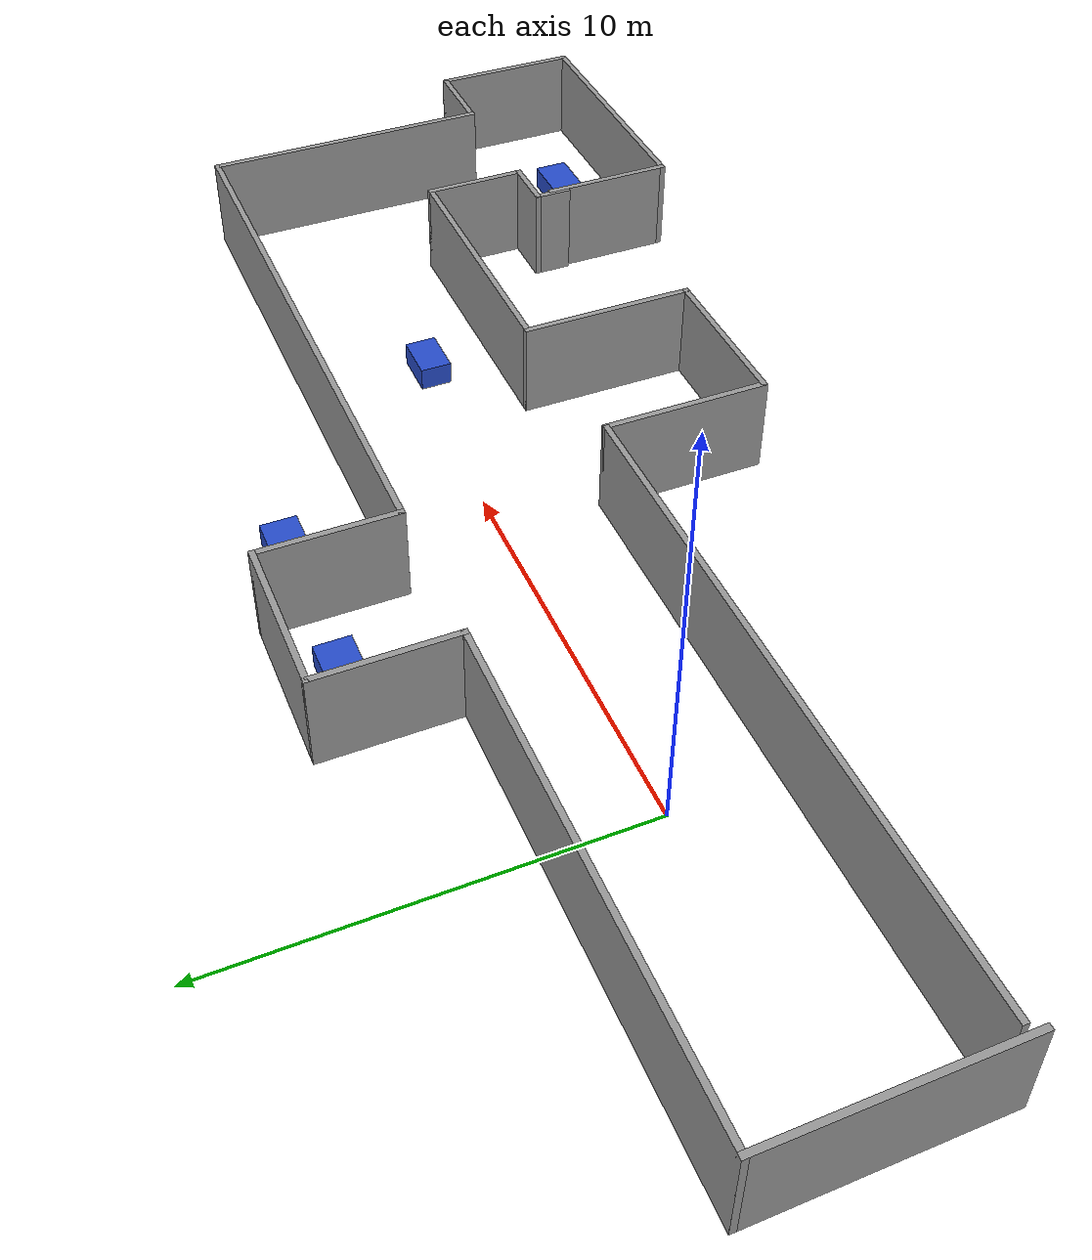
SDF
<?xml version='1.0'?>
<sdf version='1.7'>
  <model name='warehouse'>
    <pose>8.73746 -1.3318 0 0 -0 0</pose>
    <link name='Wall_11'>
      <collision name='Wall_11_Collision'>
        <geometry>
          <box>
            <size>3.5 0.15 2.5</size>
          </box>
        </geometry>
        <pose>0 0 1.25 0 -0 0</pose>
      </collision>
      <visual name='Wall_11_Visual'>
        <pose>0 0 1.25 0 -0 0</pose>
        <geometry>
          <box>
            <size>3.5 0.15 2.5</size>
          </box>
        </geometry>
        <material>
          <script>
            <uri>file://media/materials/scripts/gazebo.material</uri>
            <name>Gazebo/Grey</name>
          </script>
          <ambient>1 1 1 1</ambient>
        </material>
        <meta>
          <layer>0</layer>
        </meta>
      </visual>
      <pose>-4.725 5.725 0 0 -0 1.5708</pose>
    </link>
    <link name='Wall_12'>
      <collision name='Wall_12_Collision'>
        <geometry>
          <box>
            <size>4 0.15 2.5</size>
          </box>
        </geometry>
        <pose>0 0 1.25 0 -0 0</pose>
      </collision>
      <visual name='Wall_12_Visual'>
        <pose>0 0 1.25 0 -0 0</pose>
        <geometry>
          <box>
            <size>4 0.15 2.5</size>
          </box>
        </geometry>
        <material>
          <script>
            <uri>file://media/materials/scripts/gazebo.material</uri>
            <name>Gazebo/Grey</name>
          </script>
          <ambient>1 1 1 1</ambient>
        </material>
        <meta>
          <layer>0</layer>
        </meta>
      </visual>
      <pose>-2.8 7.4 0 0 -0 0</pose>
    </link>
    <link name='Wall_13'>
      <collision name='Wall_13_Collision'>
        <geometry>
          <box>
            <size>3.5 0.15 2.5</size>
          </box>
        </geometry>
        <pose>0 0 1.25 0 -0 0</pose>
      </collision>
      <visual name='Wall_13_Visual'>
        <pose>0 0 1.25 0 -0 0</pose>
        <geometry>
          <box>
            <size>3.5 0.15 2.5</size>
          </box>
        </geometry>
        <material>
          <script>
            <uri>file://media/materials/scripts/gazebo.material</uri>
            <name>Gazebo/Grey</name>
          </script>
          <ambient>1 1 1 1</ambient>
        </material>
        <meta>
          <layer>0</layer>
        </meta>
      </visual>
      <pose>-0.875 5.725 0 0 -0 -1.5708</pose>
    </link>
    <link name='Wall_14'>
      <collision name='Wall_14_Collision'>
        <geometry>
          <box>
            <size>15.5 0.15 2.5</size>
          </box>
        </geometry>
        <pose>0 0 1.25 0 -0 0</pose>
      </collision>
      <visual name='Wall_14_Visual'>
        <pose>0 0 1.25 0 -0 0</pose>
        <geometry>
          <box>
            <size>15.5 0.15 2.5</size>
          </box>
        </geometry>
        <material>
          <script>
            <uri>file://media/materials/scripts/gazebo.material</uri>
            <name>Gazebo/Grey</name>
          </script>
          <ambient>1 1 1 1</ambient>
        </material>
        <meta>
          <layer>0</layer>
        </meta>
      </visual>
      <pose>6.8 4.05 0 0 -0 0</pose>
    </link>
    <link name='Wall_15'>
      <collision name='Wall_15_Collision'>
        <geometry>
          <box>
            <size>7.75 0.15 2.5</size>
          </box>
        </geometry>
        <pose>0 0 1.25 0 -0 0</pose>
      </collision>
      <visual name='Wall_15_Visual'>
        <pose>0 0 1.25 0 -0 0</pose>
        <geometry>
          <box>
            <size>7.75 0.15 2.5</size>
          </box>
        </geometry>
        <material>
          <script>
            <uri>file://media/materials/scripts/gazebo.material</uri>
            <name>Gazebo/Grey</name>
          </script>
          <ambient>1 1 1 1</ambient>
        </material>
        <meta>
          <layer>0</layer>
        </meta>
      </visual>
      <pose>14.475 0.25 0 0 -0 -1.5708</pose>
    </link>
    <link name='Wall_16'>
      <collision name='Wall_16_Collision'>
        <geometry>
          <box>
            <size>2.25 0.15 2.5</size>
          </box>
        </geometry>
        <pose>0 0 1.25 0 -0 0</pose>
      </collision>
      <visual name='Wall_16_Visual'>
        <pose>0 0 1.25 0 -0 0</pose>
        <geometry>
          <box>
            <size>2.25 0.15 2.5</size>
          </box>
        </geometry>
        <material>
          <script>
            <uri>file://media/materials/scripts/gazebo.material</uri>
            <name>Gazebo/Grey</name>
          </script>
          <ambient>1 1 1 1</ambient>
        </material>
        <meta>
          <layer>0</layer>
        </meta>
      </visual>
      <pose>15.525 -3.55 0 0 -0 0</pose>
    </link>
    <link name='Wall_17'>
      <collision name='Wall_17_Collision'>
        <geometry>
          <box>
            <size>4 0.15 2.5</size>
          </box>
        </geometry>
        <pose>0 0 1.25 0 -0 0</pose>
      </collision>
      <visual name='Wall_17_Visual'>
        <pose>0 0 1.25 0 -0 0</pose>
        <geometry>
          <box>
            <size>4 0.15 2.5</size>
          </box>
        </geometry>
        <material>
          <script>
            <uri>file://media/materials/scripts/gazebo.material</uri>
            <name>Gazebo/Grey</name>
          </script>
          <ambient>1 1 1 1</ambient>
        </material>
        <meta>
          <layer>0</layer>
        </meta>
      </visual>
      <pose>16.575 -5.475 0 0 -0 -1.5708</pose>
    </link>
    <link name='Wall_18'>
      <collision name='Wall_18_Collision'>
        <geometry>
          <box>
            <size>7 0.15 2.5</size>
          </box>
        </geometry>
        <pose>0 0 1.25 0 -0 0</pose>
      </collision>
      <visual name='Wall_18_Visual'>
        <pose>0 0 1.25 0 -0 0</pose>
        <geometry>
          <box>
            <size>7 0.15 2.5</size>
          </box>
        </geometry>
        <material>
          <script>
            <uri>file://media/materials/scripts/gazebo.material</uri>
            <name>Gazebo/Grey</name>
          </script>
          <ambient>1 1 1 1</ambient>
        </material>
        <meta>
          <layer>0</layer>
        </meta>
      </visual>
      <pose>13.15 -7.4 0 0 -0 3.14159</pose>
    </link>
    <link name='Wall_19'>
      <collision name='Wall_19_Collision'>
        <geometry>
          <box>
            <size>3.5 0.15 2.5</size>
          </box>
        </geometry>
        <pose>0 0 1.25 0 -0 0</pose>
      </collision>
      <visual name='Wall_19_Visual'>
        <pose>0 0 1.25 0 -0 0</pose>
        <geometry>
          <box>
            <size>3.5 0.15 2.5</size>
          </box>
        </geometry>
        <material>
          <script>
            <uri>file://media/materials/scripts/gazebo.material</uri>
            <name>Gazebo/Grey</name>
          </script>
          <ambient>1 1 1 1</ambient>
        </material>
        <meta>
          <layer>0</layer>
        </meta>
      </visual>
      <pose>9.725 -5.725 0 0 -0 1.5708</pose>
    </link>
    <link name='Wall_28'>
      <collision name='Wall_28_Collision'>
        <geometry>
          <box>
            <size>16.5 0.15 2.5</size>
          </box>
        </geometry>
        <pose>0 0 1.25 0 -0 0</pose>
      </collision>
      <visual name='Wall_28_Visual'>
        <pose>0 0 1.25 0 -0 0</pose>
        <geometry>
          <box>
            <size>16.5 0.15 2.5</size>
          </box>
        </geometry>
        <material>
          <script>
            <uri>file://media/materials/scripts/gazebo.material</uri>
            <name>Gazebo/Grey</name>
          </script>
          <ambient>1 1 1 1</ambient>
        </material>
        <meta>
          <layer>0</layer>
        </meta>
      </visual>
      <pose>-8.13879 -1.26237 0 0 -0 0</pose>
    </link>
    <link name='Wall_29'>
      <collision name='Wall_29_Collision'>
        <geometry>
          <box>
            <size>4.25 0.15 2.5</size>
          </box>
        </geometry>
        <pose>0 0 1.25 0 -0 0</pose>
      </collision>
      <visual name='Wall_29_Visual'>
        <pose>0 0 1.25 0 -0 0</pose>
        <geometry>
          <box>
            <size>4.25 0.15 2.5</size>
          </box>
        </geometry>
        <material>
          <script>
            <uri>file://media/materials/scripts/gazebo.material</uri>
            <name>Gazebo/Grey</name>
          </script>
          <ambient>1 1 1 1</ambient>
        </material>
        <meta>
          <layer>0</layer>
        </meta>
      </visual>
      <pose>0.036209 -3.31237 0 0 -0 -1.5708</pose>
    </link>
    <link name='Wall_30'>
      <collision name='Wall_30_Collision'>
        <geometry>
          <box>
            <size>4.25 0.15 2.5</size>
          </box>
        </geometry>
        <pose>0 0 1.25 0 -0 0</pose>
      </collision>
      <visual name='Wall_30_Visual'>
        <pose>0 0 1.25 0 -0 0</pose>
        <geometry>
          <box>
            <size>4.25 0.15 2.5</size>
          </box>
        </geometry>
        <material>
          <script>
            <uri>file://media/materials/scripts/gazebo.material</uri>
            <name>Gazebo/Grey</name>
          </script>
          <ambient>1 1 1 1</ambient>
        </material>
        <meta>
          <layer>0</layer>
        </meta>
      </visual>
      <pose>2.08621 -5.36237 0 0 -0 0</pose>
    </link>
    <link name='Wall_31'>
      <collision name='Wall_31_Collision'>
        <geometry>
          <box>
            <size>4.5 0.15 2.5</size>
          </box>
        </geometry>
        <pose>0 0 1.25 0 -0 0</pose>
      </collision>
      <visual name='Wall_31_Visual'>
        <pose>0 0 1.25 0 -0 0</pose>
        <geometry>
          <box>
            <size>4.5 0.15 2.5</size>
          </box>
        </geometry>
        <material>
          <script>
            <uri>file://media/materials/scripts/gazebo.material</uri>
            <name>Gazebo/Grey</name>
          </script>
          <ambient>1 1 1 1</ambient>
        </material>
        <meta>
          <layer>0</layer>
        </meta>
      </visual>
      <pose>4.13621 -3.18737 0 0 -0 1.5708</pose>
    </link>
    <link name='Wall_32'>
      <collision name='Wall_32_Collision'>
        <geometry>
          <box>
            <size>7 0.15 2.5</size>
          </box>
        </geometry>
        <pose>0 0 1.25 0 -0 0</pose>
      </collision>
      <visual name='Wall_32_Visual'>
        <pose>0 0 1.25 0 -0 0</pose>
        <geometry>
          <box>
            <size>7 0.15 2.5</size>
          </box>
        </geometry>
        <material>
          <script>
            <uri>file://media/materials/scripts/gazebo.material</uri>
            <name>Gazebo/Grey</name>
          </script>
          <ambient>1 1 1 1</ambient>
        </material>
        <meta>
          <layer>0</layer>
        </meta>
      </visual>
      <pose>7.56121 -1.01237 0 0 -0 0</pose>
    </link>
    <link name='Wall_33'>
      <collision name='Wall_33_Collision'>
        <geometry>
          <box>
            <size>2.75 0.15 2.5</size>
          </box>
        </geometry>
        <pose>0 0 1.25 0 -0 0</pose>
      </collision>
      <visual name='Wall_33_Visual'>
        <pose>0 0 1.25 0 -0 0</pose>
        <geometry>
          <box>
            <size>2.75 0.15 2.5</size>
          </box>
        </geometry>
        <material>
          <script>
            <uri>file://media/materials/scripts/gazebo.material</uri>
            <name>Gazebo/Grey</name>
          </script>
          <ambient>1 1 1 1</ambient>
        </material>
        <meta>
          <layer>0</layer>
        </meta>
      </visual>
      <pose>10.9862 -2.31237 0 0 -0 -1.5708</pose>
    </link>
    <link name='Wall_34'>
      <collision name='Wall_34_Collision'>
        <geometry>
          <box>
            <size>1.5 0.15 2.5</size>
          </box>
        </geometry>
        <pose>0 0 1.25 0 -0 0</pose>
      </collision>
      <visual name='Wall_34_Visual'>
        <pose>0 0 1.25 0 -0 0</pose>
        <geometry>
          <box>
            <size>1.5 0.15 2.5</size>
          </box>
        </geometry>
        <material>
          <script>
            <uri>file://media/materials/scripts/gazebo.material</uri>
            <name>Gazebo/Grey</name>
          </script>
          <ambient>1 1 1 1</ambient>
        </material>
        <meta>
          <layer>0</layer>
        </meta>
      </visual>
      <pose>10.3112 -3.61237 0 0 -0 3.14159</pose>
    </link>
    <link name='Wall_35'>
      <collision name='Wall_35_Collision'>
        <geometry>
          <box>
            <size>1 0.15 2.5</size>
          </box>
        </geometry>
        <pose>0 0 1.25 0 -0 0</pose>
      </collision>
      <visual name='Wall_35_Visual'>
        <pose>0 0 1.25 0 -0 0</pose>
        <geometry>
          <box>
            <size>1 0.15 2.5</size>
          </box>
        </geometry>
        <material>
          <script>
            <uri>file://media/materials/scripts/gazebo.material</uri>
            <name>Gazebo/Grey</name>
          </script>
          <ambient>1 1 1 1</ambient>
        </material>
        <meta>
          <layer>0</layer>
        </meta>
      </visual>
      <pose>9.63621 -4.03737 0 0 -0 -1.5708</pose>
    </link>
    <link name='Wall_38'>
      <collision name='Wall_38_Collision'>
        <geometry>
          <box>
            <size>5.75 0.15 2.5</size>
          </box>
        </geometry>
        <pose>0 0 1.25 0 -0 0</pose>
      </collision>
      <visual name='Wall_38_Visual'>
        <pose>0 0 1.25 0 -0 0</pose>
        <geometry>
          <box>
            <size>5.75 0.15 2.5</size>
          </box>
        </geometry>
        <material>
          <script>
            <uri>file://media/materials/scripts/gazebo.material</uri>
            <name>Gazebo/Grey</name>
          </script>
          <ambient>1 1 1 1</ambient>
        </material>
        <meta>
          <layer>0</layer>
        </meta>
      </visual>
      <pose>-16.575 1.25 0 0 -0 -1.5708</pose>
    </link>
    <link name='Wall_7'>
      <collision name='Wall_7_Collision'>
        <geometry>
          <box>
            <size>12 0.15 2.5</size>
          </box>
        </geometry>
        <pose>0 0 1.25 0 -0 0</pose>
      </collision>
      <visual name='Wall_7_Visual'>
        <pose>0 0 1.25 0 -0 0</pose>
        <geometry>
          <box>
            <size>12 0.15 2.5</size>
          </box>
        </geometry>
        <material>
          <script>
            <uri>file://media/materials/scripts/gazebo.material</uri>
            <name>Gazebo/Grey</name>
          </script>
          <ambient>1 1 1 1</ambient>
        </material>
        <meta>
          <layer>0</layer>
        </meta>
      </visual>
      <pose>-10.65 4.05 0 0 -0 0</pose>
    </link>
    <link name='Bed_1'>
      <collision name='Bed_1_Collision'>
        <geometry>
          <box>
            <size>2.0 0.9 0.6</size>
          </box>
        </geometry>
        <pose>0 0 0.3 0 0 0</pose>
      </collision>
      <visual name='Bed_1_Visual'>
        <pose>0 0 0.3 0 0 0</pose>
        <geometry>
          <box>
            <size>2.0 0.9 0.6</size>
          </box>
        </geometry>
        <material>
          <script>
            <uri>file://media/materials/scripts/gazebo.material</uri>
            <name>Gazebo/Blue</name>
          </script>
          <ambient>1 1 1 1</ambient>
        </material>
      </visual>
      <pose>-3.2 6.2 0 0 0 0</pose>
    </link>

    <link name='Bed_2'>
      <collision name='Bed_2_Collision'>
        <geometry>
          <box>
            <size>2.0 0.9 0.6</size>
          </box>
        </geometry>
        <pose>0 0 0.3 0 0 0</pose>
      </collision>
      <visual name='Bed_2_Visual'>
        <pose>0 0 0.3 0 0 0</pose>
        <geometry>
          <box>
            <size>2.0 0.9 0.6</size>
          </box>
        </geometry>
        <material>
          <script>
            <uri>file://media/materials/scripts/gazebo.material</uri>
            <name>Gazebo/Blue</name>
          </script>
          <ambient>1 1 1 1</ambient>
        </material>
      </visual>
      <pose>0.9 6.2 0 0 0 0</pose>
    </link>

    <link name='Bed_3'>
      <collision name='Bed_3_Collision'>
        <geometry>
          <box>
            <size>2.0 0.9 0.6</size>
          </box>
        </geometry>
        <pose>0 0 0.3 0 0 0</pose>
      </collision>
      <visual name='Bed_3_Visual'>
        <pose>0 0 0.3 0 0 0</pose>
        <geometry>
          <box>
            <size>2.0 0.9 0.6</size>
          </box>
        </geometry>
        <material>
          <script>
            <uri>file://media/materials/scripts/gazebo.material</uri>
            <name>Gazebo/Blue</name>
          </script>
          <ambient>1 1 1 1</ambient>
        </material>
      </visual>
      <pose>1.6 -4.2 0 0 0 1.5708</pose>
    </link>

    <link name='Bed_4'>
      <collision name='Bed_4_Collision'>
        <geometry>
          <box>
            <size>2.0 0.9 0.6</size>
          </box>
        </geometry>
        <pose>0 0 0.3 0 0 0</pose>
      </collision>
      <visual name='Bed_4_Visual'>
        <pose>0 0 0.3 0 0 0</pose>
        <geometry>
          <box>
            <size>2.0 0.9 0.6</size>
          </box>
        </geometry>
        <material>
          <script>
            <uri>file://media/materials/scripts/gazebo.material</uri>
            <name>Gazebo/Blue</name>
          </script>
          <ambient>1 1 1 1</ambient>
        </material>
      </visual>
      <pose>12.8 -5.8 0 0 0 0</pose>
    </link>

    <link name='Bed_5'>
      <collision name='Bed_5_Collision'>
        <geometry>
          <box>
            <size>1.2 0.8 0.6</size>
          </box>
        </geometry>
        <pose>0 0 0.3 0 0 0</pose>
      </collision>
      <visual name='Bed_5_Visual'>
        <pose>0 0 0.3 0 0 0</pose>
        <geometry>
          <box>
            <size>1.2 0.8 0.6</size>
          </box>
        </geometry>
        <material>
          <script>
            <uri>file://media/materials/scripts/gazebo.material</uri>
            <name>Gazebo/Blue</name>
          </script>
          <ambient>1 1 1 1</ambient>
        </material>
      </visual>
      <pose>6.5 0.8 0 0 0 0</pose>
    </link>

    <static>1</static>
  </model>
</sdf>
